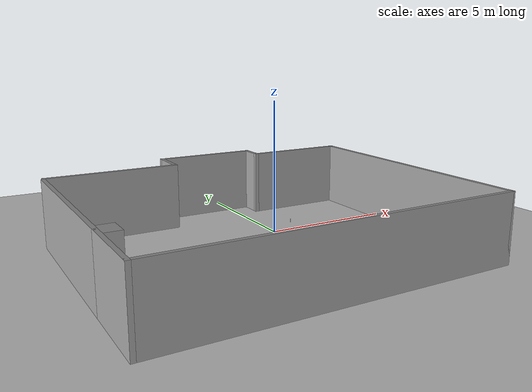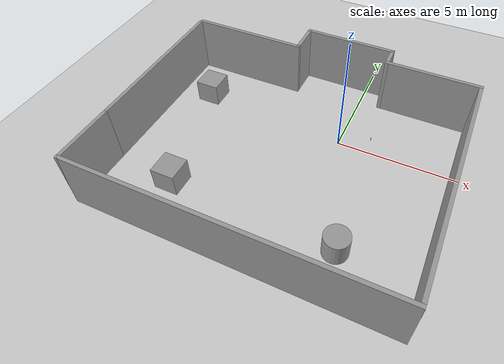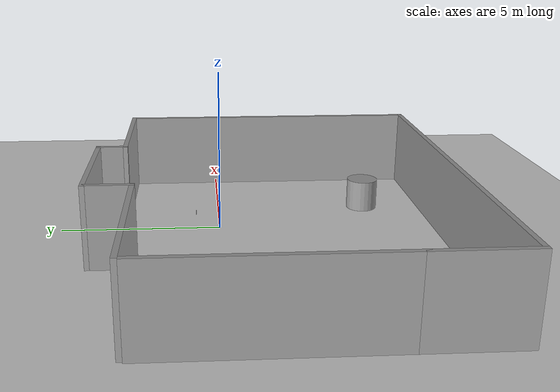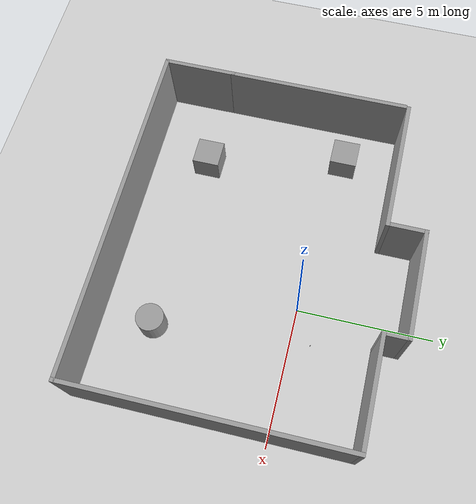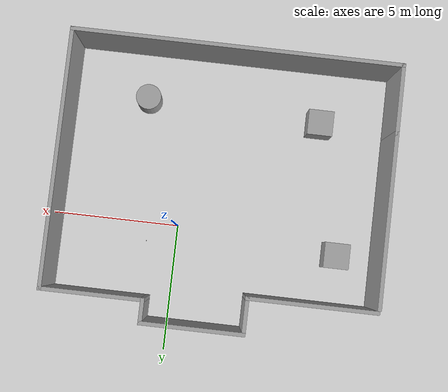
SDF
<sdf version="1.7">
 <world name="default">
  <plugin name="ros_link_attacher_plugin" filename="libgazebo_ros_link_attacher.so"/>
  <light name="sun" type="directional">
   <pose>0 0 10 0 -0 0</pose>
   <diffuse>0.8 0.8 0.8 1</diffuse>
   <specular>0.2 0.2 0.2 1</specular>
   <attenuation>
    <range>1000</range>
    <constant>0.9</constant>
    <linear>0.01</linear>
    <quadratic>0.001</quadratic>
   </attenuation>
   <direction>-0.5 0.1 -0.9</direction>
   <spot><inner_angle>0</inner_angle><outer_angle>0</outer_angle><falloff>0</falloff></spot>
  </light>
  <model name="ground_plane">
   <static>1</static>
   <link name="link">
    <collision name="collision">
     <geometry><plane><normal>0 0 1</normal><size>100 100</size></plane></geometry>
     <surface>
      <contact><collide_bitmask>65535</collide_bitmask></contact>
      <friction><ode><mu>100</mu><mu2>50</mu2></ode></friction>
     </surface>
    </collision>
    <visual name="visual">
     <cast_shadows>0</cast_shadows>
     <geometry><plane><normal>0 0 1</normal><size>100 100</size></plane></geometry>
     <material>
      <script><uri>file://media/materials/scripts/gazebo.material</uri><name>Gazebo/Grey</name></script>
     </material>
    </visual>
   </link>
  </model>
  <gravity>0 0 -9.8</gravity>
  <magnetic_field>6e-06 2.3e-05 -4.2e-05</magnetic_field>
  <atmosphere type="adiabatic"/>
  <physics type="ode">
   <max_step_size>0.001</max_step_size>
   <real_time_factor>1</real_time_factor>
   <real_time_update_rate>1000</real_time_update_rate>
  </physics>
  <scene><ambient>0.4 0.4 0.4 1</ambient><background>0.7 0.7 0.7 1</background><shadows>1</shadows></scene>
  <spherical_coordinates>
   <surface_model>EARTH_WGS84</surface_model>
   <latitude_deg>0</latitude_deg>
   <longitude_deg>0</longitude_deg>
   <elevation>0</elevation>
   <heading_deg>0</heading_deg>
  </spherical_coordinates>
  <model name="Untitled1">
   <pose>-1.5805 -1.54295 0 0 -0 0</pose>
   <link name="Wall_10">
    <collision name="Wall_10_Collision">
     <geometry><box><size>4 0.15 2.5</size></box></geometry>
     <pose>0 0 1.25 0 -0 0</pose>
    </collision>
    <visual name="Wall_10_Visual">
     <pose>0 0 1.25 0 -0 0</pose>
     <geometry><box><size>4 0.15 2.5</size></box></geometry>
     <material>
      <script><uri>file://media/materials/scripts/gazebo.material</uri><name>Gazebo/Grey</name></script>
      <ambient>1 1 1 1</ambient>
     </material>
     <meta><layer>0</layer></meta>
    </visual>
    <pose>0.525 5.35 0 0 -0 3.14159</pose>
   </link>
   <link name="Wall_11">
    <collision name="Wall_11_Collision">
     <geometry><box><size>1.5 0.15 2.5</size></box></geometry>
     <pose>0 0 1.25 0 -0 0</pose>
    </collision>
    <visual name="Wall_11_Visual">
     <pose>0 0 1.25 0 -0 0</pose>
     <geometry><box><size>1.5 0.15 2.5</size></box></geometry>
     <material>
      <script><uri>file://media/materials/scripts/gazebo.material</uri><name>Gazebo/Grey</name></script>
      <ambient>1 1 1 1</ambient>
     </material>
     <meta><layer>0</layer></meta>
    </visual>
    <pose>-1.4 4.675 0 0 -0 -1.5708</pose>
   </link>
   <link name="Wall_12">
    <collision name="Wall_12_Collision">
     <geometry><box><size>5 0.15 2.5</size></box></geometry>
     <pose>0 0 1.25 0 -0 0</pose>
    </collision>
    <visual name="Wall_12_Visual">
     <pose>0 0 1.25 0 -0 0</pose>
     <geometry><box><size>5 0.15 2.5</size></box></geometry>
     <material>
      <script><uri>file://media/materials/scripts/gazebo.material</uri><name>Gazebo/Grey</name></script>
      <ambient>1 1 1 1</ambient>
     </material>
     <meta><layer>0</layer></meta>
    </visual>
    <pose>-3.825 4 0 0 -0 3.14159</pose>
   </link>
   <link name="Wall_3">
    <collision name="Wall_3_Collision">
     <geometry><box><size>6.75 0.15 2.5</size></box></geometry>
     <pose>0 0 1.25 0 -0 0</pose>
    </collision>
    <visual name="Wall_3_Visual">
     <pose>0 0 1.25 0 -0 0</pose>
     <geometry><box><size>6.75 0.15 2.5</size></box></geometry>
     <material>
      <script><uri>file://media/materials/scripts/gazebo.material</uri><name>Gazebo/Grey</name></script>
      <ambient>1 1 1 1</ambient>
     </material>
     <meta><layer>0</layer></meta>
    </visual>
    <pose>-6.3 0.55 0 0 -0 1.5708</pose>
   </link>
   <link name="Wall_5">
    <collision name="Wall_5_Collision">
     <geometry><box><size>2.75 0.15 2.5</size></box></geometry>
     <pose>0 0 1.25 0 -0 0</pose>
    </collision>
    <visual name="Wall_5_Visual">
     <pose>0 0 1.25 0 -0 0</pose>
     <geometry><box><size>2.75 0.15 2.5</size></box></geometry>
     <material>
      <script><uri>file://media/materials/scripts/gazebo.material</uri><name>Gazebo/Grey</name></script>
      <ambient>1 1 1 1</ambient>
     </material>
     <meta><layer>0</layer></meta>
    </visual>
    <pose>-6.3 -4.05 0 0 -0 -1.5708</pose>
   </link>
   <link name="Wall_6">
    <collision name="Wall_6_Collision">
     <geometry><box><size>12.75 0.15 2.5</size></box></geometry>
     <pose>0 0 1.25 0 -0 0</pose>
    </collision>
    <visual name="Wall_6_Visual">
     <pose>0 0 1.25 0 -0 0</pose>
     <geometry><box><size>12.75 0.15 2.5</size></box></geometry>
     <material>
      <script><uri>file://media/materials/scripts/gazebo.material</uri><name>Gazebo/Grey</name></script>
      <ambient>1 1 1 1</ambient>
     </material>
     <meta><layer>0</layer></meta>
    </visual>
    <pose>-0 -5.35 0 0 -0 0</pose>
   </link>
   <link name="Wall_7">
    <collision name="Wall_7_Collision">
     <geometry><box><size>10 0.15 2.5</size></box></geometry>
     <pose>0 0 1.25 0 -0 0</pose>
    </collision>
    <visual name="Wall_7_Visual">
     <pose>0 0 1.25 0 -0 0</pose>
     <geometry><box><size>10 0.15 2.5</size></box></geometry>
     <material>
      <script><uri>file://media/materials/scripts/gazebo.material</uri><name>Gazebo/Grey</name></script>
      <ambient>1 1 1 1</ambient>
     </material>
     <meta><layer>0</layer></meta>
    </visual>
    <pose>6.3 -0.425 0 0 -0 1.5708</pose>
   </link>
   <link name="Wall_8">
    <collision name="Wall_8_Collision">
     <geometry><box><size>4 0.15 2.5</size></box></geometry>
     <pose>0 0 1.25 0 -0 0</pose>
    </collision>
    <visual name="Wall_8_Visual">
     <pose>0 0 1.25 0 -0 0</pose>
     <geometry><box><size>4 0.15 2.5</size></box></geometry>
     <material>
      <script><uri>file://media/materials/scripts/gazebo.material</uri><name>Gazebo/Grey</name></script>
      <ambient>1 1 1 1</ambient>
     </material>
     <meta><layer>0</layer></meta>
    </visual>
    <pose>4.375 4.5 0 0 -0 3.14159</pose>
   </link>
   <link name="Wall_9">
    <collision name="Wall_9_Collision">
     <geometry><box><size>1 0.15 2.5</size></box></geometry>
     <pose>0 0 1.25 0 -0 0</pose>
    </collision>
    <visual name="Wall_9_Visual">
     <pose>0 0 1.25 0 -0 0</pose>
     <geometry><box><size>1 0.15 2.5</size></box></geometry>
     <material>
      <script><uri>file://media/materials/scripts/gazebo.material</uri><name>Gazebo/Grey</name></script>
      <ambient>1 1 1 1</ambient>
     </material>
     <meta><layer>0</layer></meta>
    </visual>
    <pose>2.45 4.925 0 0 -0 1.5708</pose>
   </link>
   <static>1</static>
  </model>
  <model name="unit_box">
   <pose>-5.17855 -4.65219 0.499995 -1e-05 -0 -0</pose>
   <link name="link">
    <inertial>
     <mass>1</mass>
     <inertia>
      <ixx>0.166667</ixx>
      <ixy>0</ixy>
      <ixz>0</ixz>
      <iyy>0.166667</iyy>
      <iyz>0</iyz>
      <izz>0.166667</izz>
     </inertia>
    </inertial>
    <collision name="collision"><geometry><box><size>1 1 1</size></box></geometry></collision>
    <visual name="visual">
     <geometry><box><size>1 1 1</size></box></geometry>
     <material>
      <script><name>Gazebo/Grey</name><uri>file://media/materials/scripts/gazebo.material</uri></script>
     </material>
    </visual>
   </link>
  </model>
  <model name="unit_cylinder">
   <pose>1.70037 -4.91222 0.499998 3e-06 -4e-06 0</pose>
   <link name="link">
    <inertial>
     <mass>1</mass>
     <inertia><ixx>0.145833</ixx><ixy>0</ixy><ixz>0</ixz><iyy>0.145833</iyy><iyz>0</iyz><izz>0.125</izz></inertia>
    </inertial>
    <collision name="collision">
     <geometry><cylinder><radius>0.5</radius><length>1</length></cylinder></geometry>
    </collision>
    <visual name="visual">
     <geometry><cylinder><radius>0.5</radius><length>1</length></cylinder></geometry>
     <material>
      <script><name>Gazebo/Grey</name><uri>file://media/materials/scripts/gazebo.material</uri></script>
     </material>
    </visual>
   </link>
  </model>
  <model name="unit_box_0">
   <pose>-6.35145 0.501677 0.499995 -1e-05 -0 -0</pose>
   <link name="link">
    <inertial>
     <mass>1</mass>
     <inertia>
      <ixx>0.166667</ixx>
      <ixy>0</ixy>
      <ixz>0</ixz>
      <iyy>0.166667</iyy>
      <iyz>0</iyz>
      <izz>0.166667</izz>
     </inertia>
    </inertial>
    <collision name="collision"><geometry><box><size>1 1 1</size></box></geometry></collision>
    <visual name="visual">
     <geometry><box><size>1 1 1</size></box></geometry>
     <material>
      <script><name>Gazebo/Grey</name><uri>file://media/materials/scripts/gazebo.material</uri></script>
     </material>
    </visual>
   </link>
  </model>
  <model name="unit_cylinder_0">
   <pose>1.19672 0.746184 0.087974 1e-06 -5e-06 0.003276</pose>
   <link name="link">
    <inertial>
     <mass>0.02</mass>
     <inertia>
      <ixx>0.00145833</ixx>
      <ixy>0</ixy>
      <ixz>0</ixz>
      <iyy>0.00145833</iyy>
      <iyz>0</iyz>
      <izz>0.00125</izz>
     </inertia>
    </inertial>
    <collision name="collision">
     <geometry><cylinder><radius>0.01</radius><length>0.15</length></cylinder></geometry>
     <surface><friction><ode><mu>100000</mu><mu2>100000</mu2></ode></friction></surface>
    </collision>
    <visual name="visual">
     <geometry><cylinder><radius>0.01</radius><length>0.15</length></cylinder></geometry>
     <material>
      <ambient>1 1 1 1</ambient>
      <diffuse>1 1 1 1</diffuse>
      <specular>0 0 0 0</specular>
      <emissive>1 1 1 1</emissive>
      <script><name>Gazebo/Grey</name><uri>file://media/materials/scripts/gazebo.material</uri></script>
     </material>
    </visual>
   </link>
  </model>
 </world>
</sdf>
